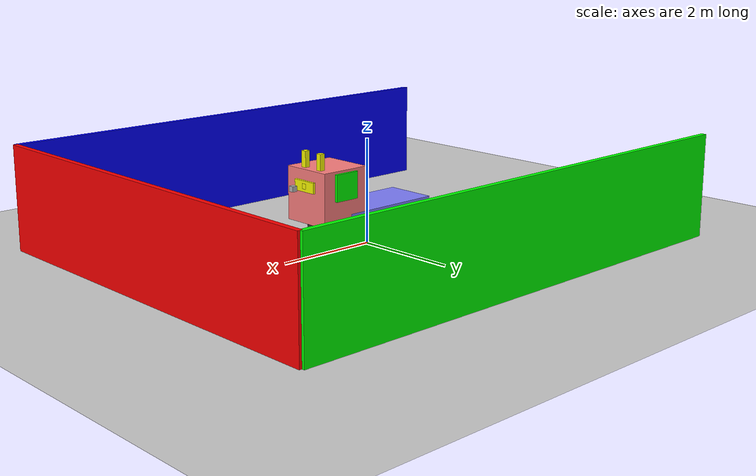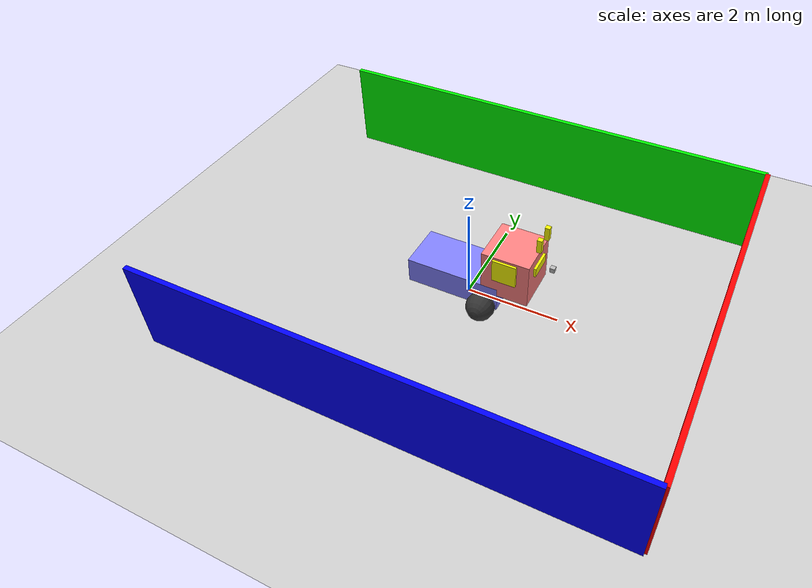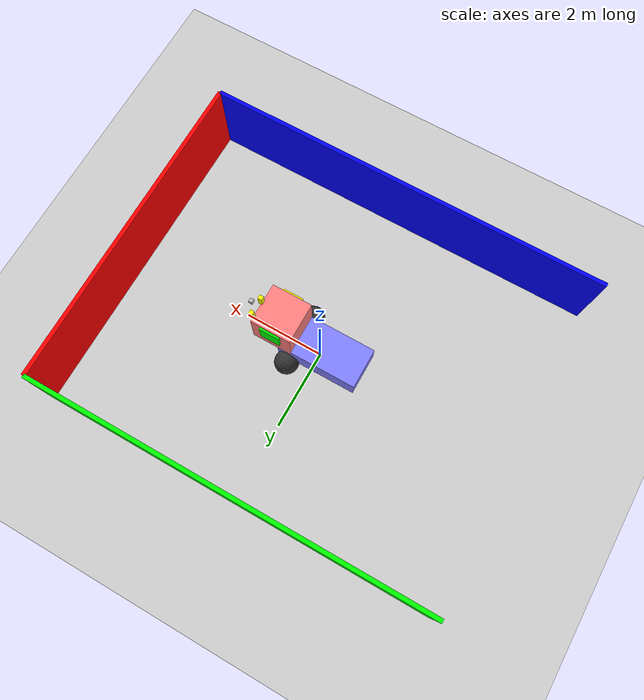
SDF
<?xml version="1.0" ?>
<sdf version="1.8">
  <world name="demo">
    <plugin
      filename="gz-sim-physics-system"
      name="gz::sim::systems::Physics">
    </plugin>
    <plugin
      filename="gz-sim-sensors-system"
      name="gz::sim::systems::Sensors">
      <render_engine>ogre2</render_engine>
    </plugin>
    <plugin
      filename="gz-sim-scene-broadcaster-system"
      name="gz::sim::systems::SceneBroadcaster">
    </plugin>
    <plugin
      filename="gz-sim-user-commands-system"
      name="gz::sim::systems::UserCommands">
    </plugin>
    <plugin
      filename="BasicSystem"
      name="ros_gz_example_gazebo::BasicSystem">
    </plugin>
    <plugin
      filename="FullSystem"
      name="ros_gz_example_gazebo::FullSystem">
    </plugin>

    <plugin filename="gz-sim-imu-system"
        name="gz::sim::systems::Imu">
    </plugin>

    <light name="sun" type="directional">
      <cast_shadows>true</cast_shadows>
      <pose>0 0 10 0 0 0</pose>
      <diffuse>0.8 0.8 0.8 1</diffuse>
      <specular>0.2 0.2 0.2 1</specular>
      <attenuation>
        <range>1000</range>
        <constant>0.9</constant>
        <linear>0.01</linear>
        <quadratic>0.001</quadratic>
      </attenuation>
      <direction>-0.5 0.1 -0.9</direction>
    </light>

    <model name="ground_plane">
      <static>true</static>
      <link name="link">
        <collision name="collision">
          <geometry>
            <plane>
              <normal>0 0 1</normal>
              <size>100 100</size>
            </plane>
          </geometry>
        </collision>
        <visual name="visual">
          <geometry>
            <plane>
              <normal>0 0 1</normal>
              <size>100 100</size>
            </plane>
          </geometry>
          <material>
            <ambient>0.8 0.8 0.8 1</ambient>
            <diffuse>0.8 0.8 0.8 1</diffuse>
            <specular>0.8 0.8 0.8 1</specular>
          </material>
        </visual>
      </link>
    </model>

    <model name="diff_drive">
      <self_collide>true</self_collide>
      <pose>0 0 0.35 0 0 0</pose>
      <include merge="true">
        <uri>package://ros_gz_example_description/models/diff_drive</uri>
      </include>

      <plugin
        filename="gz-sim-joint-state-publisher-system"
        name="gz::sim::systems::JointStatePublisher">
      </plugin>

      <plugin
        filename="gz-sim-pose-publisher-system"
        name="gz::sim::systems::PosePublisher">
        <publish_link_pose>true</publish_link_pose>
        <use_pose_vector_msg>true</use_pose_vector_msg>
        <static_publisher>true</static_publisher>
        <static_update_frequency>1</static_update_frequency>
      </plugin>

      <plugin
        filename="gz-sim-odometry-publisher-system"
        name="gz::sim::systems::OdometryPublisher">
        <odom_frame>diff_drive/odom</odom_frame>
        <robot_base_frame>diff_drive</robot_base_frame>
      </plugin>
    </model>

    <!-- ПРЕПЯТСТВИЯ ДЛЯ ТЕСТИРОВАНИЯ ЛИДАРА -->

    <!-- Стена спереди -->
    <model name="front_wall">
      <static>true</static>
      <pose>5 0 1 0 0 0</pose>
      <link name="link">
        <collision name="collision">
          <geometry>
            <box>
              <size>0.1 8 2</size>
            </box>
          </geometry>
        </collision>
        <visual name="visual">
          <geometry>
            <box>
              <size>0.1 8 2</size>
            </box>
          </geometry>
          <material>
            <ambient>1 0 0 1</ambient>
            <diffuse>1 0 0 1</diffuse>
            <specular>0.5 0 0 1</specular>
          </material>
        </visual>
      </link>
    </model>

    <!-- Стена слева -->
    <model name="left_wall">
      <static>true</static>
      <pose>0 4 1 0 0 0</pose>
      <link name="link">
        <collision name="collision">
          <geometry>
            <box>
              <size>10 0.1 2</size>
            </box>
          </geometry>
        </collision>
        <visual name="visual">
          <geometry>
            <box>
              <size>10 0.1 2</size>
            </box>
          </geometry>
          <material>
            <ambient>0 1 0 1</ambient>
            <diffuse>0 1 0 1</diffuse>
            <specular>0 0.5 0 1</specular>
          </material>
        </visual>
      </link>
    </model>

    <!-- Стена справа -->
    <model name="right_wall">
      <static>true</static>
      <pose>0 -4 1 0 0 0</pose>
      <link name="link">
        <collision name="collision">
          <geometry>
            <box>
              <size>10 0.1 2</size>
            </box>
          </geometry>
        </collision>
        <visual name="visual">
          <geometry>
            <box>
              <size>10 0.1 2</size>
            </box>
          </geometry>
          <material>
            <ambient>0 0 1 1</ambient>
            <diffuse>0 0 1 1</diffuse>
            <specular>0 0 0.5 1</specular>
          </material>
        </visual>
      </link>
    </model>

  </world>
</sdf>

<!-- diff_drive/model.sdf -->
<sdf version="1.8">
    <model name='diff_drive'>

      <link name='chassis'>
        <pose>-0.151427 0 0.175 0 0 0</pose>
        <inertial>
          <mass>1.14395</mass>
          <inertia>
            <ixx>0.126164</ixx>
            <ixy>0</ixy>
            <ixz>0</ixz>
            <iyy>0.416519</iyy>
            <iyz>0</iyz>
            <izz>0.481014</izz>
          </inertia>
        </inertial>
        <visual name='visual_chassis'>
          <geometry>
            <box>
              <size>2.01142 1 0.568726</size>
            </box>
          </geometry>
          <material>
            <ambient>0.5 0.5 1.0 1</ambient>
            <diffuse>0.5 0.5 1.0 1</diffuse>
            <specular>0.0 0.0 1.0 1</specular>
          </material>
        </visual>
        <collision name='collision_chassis'>
          <geometry>
            <box>
              <size>2.01142 1 0.568726</size>
            </box>
          </geometry>
        </collision>
      </link>

      <link name='left_wheel'>
        <pose>0.554283 0.625029 -0.025 -1.5707 0 0</pose>
        <inertial>
          <mass>2</mass>
          <inertia>
            <ixx>0.145833</ixx>
            <ixy>0</ixy>
            <ixz>0</ixz>
            <iyy>0.145833</iyy>
            <iyz>0</iyz>
            <izz>0.125</izz>
          </inertia>
        </inertial>
        <visual name='visual_left_wheel'>
          <geometry>
            <sphere>
              <radius>0.3</radius>
            </sphere>
          </geometry>
          <material>
            <ambient>0.2 0.2 0.2 1</ambient>
            <diffuse>0.2 0.2 0.2 1</diffuse>
            <specular>0.2 0.2 0.2 1</specular>
          </material>
        </visual>
        <collision name='collision_left_wheel'>
          <geometry>
            <sphere>
              <radius>0.3</radius>
            </sphere>
          </geometry>
        </collision>
      </link>

      <link name='right_wheel'>
        <pose>0.554282 -0.625029 -0.025 -1.5707 0 0</pose>
        <inertial>
          <mass>2</mass>
          <inertia>
            <ixx>0.145833</ixx>
            <ixy>0</ixy>
            <ixz>0</ixz>
            <iyy>0.145833</iyy>
            <iyz>0</iyz>
            <izz>0.125</izz>
          </inertia>
        </inertial>
        <visual name='visual_right_wheel'>
          <geometry>
            <sphere>
              <radius>0.3</radius>
            </sphere>
          </geometry>
          <material>
            <ambient>0.2 0.2 0.2 1</ambient>
            <diffuse>0.2 0.2 0.2 1</diffuse>
            <specular>0.2 0.2 0.2 1</specular>
          </material>
        </visual>
        <collision name='collision_right_wheel'>
          <geometry>
            <sphere>
              <radius>0.3</radius>
            </sphere>
          </geometry>
        </collision>
      </link>

      <link name='caster'>
        <pose>-0.957138 0 -0.125 0 0 0</pose>
        <inertial>
          <mass>1</mass>
          <inertia>
            <ixx>0.1</ixx>
            <ixy>0</ixy>
            <ixz>0</ixz>
            <iyy>0.1</iyy>
            <iyz>0</iyz>
            <izz>0.1</izz>
          </inertia>
        </inertial>
        <visual name='visual_caster'>
          <geometry>
            <sphere>
              <radius>0.2</radius>
            </sphere>
          </geometry>
          <material>
            <ambient>0.2 0.2 0.2 1</ambient>
            <diffuse>0.2 0.2 0.2 1</diffuse>
            <specular>0.2 0.2 0.2 1</specular>
          </material>
        </visual>
        <collision name='collision_caster'>
          <geometry>
            <sphere>
              <radius>0.2</radius>
            </sphere>
          </geometry>
        </collision>
      </link>

      <!-- ГОЛОВА -->
      <link name='golova'>
        <pose>1 0 0.8 0 0 0</pose>
        <inertial>
          <mass>0.5</mass>
          <inertia>
            <ixx>0.01</ixx>
            <ixy>0</ixy>
            <ixz>0</ixz>
            <iyy>0.01</iyy>
            <iyz>0</iyz>
            <izz>0.01</izz>
          </inertia>
        </inertial>
        <visual name='visual_golova'>
          <geometry>
            <box>
              <size>1 1 1</size>
            </box>
          </geometry>
          <material>
            <ambient>1.0 0.5 0.5 1</ambient>
            <diffuse>1.0 0.5 0.5 1</diffuse>
            <specular>0.5 0.2 0.2 1</specular>
          </material>
        </visual>
        <collision name='collision_golova'>
          <geometry>
            <box>
              <size>1 1 1</size>
            </box>
          </geometry>
        </collision>
      </link>

      <!-- ДЕКОРАТИВНЫЕ ЭЛЕМЕНТЫ -->
      <link name='yxo1'>
        <pose>1 0.5 1 0 0 0</pose>
        <inertial>
          <mass>0.1</mass>
          <inertia>
            <ixx>0.001</ixx>
            <ixy>0</ixy>
            <ixz>0</ixz>
            <iyy>0.001</iyy>
            <iyz>0</iyz>
            <izz>0.001</izz>
          </inertia>
        </inertial>
        <visual name='visual_yxo1'>
          <geometry>
            <box>
              <size>0.5 0.1 0.5</size>
            </box>
          </geometry>
          <material>
            <ambient>0.0 1.0 0.0 1</ambient>
            <diffuse>0.0 1.0 0.0 1</diffuse>
            <specular>0.0 0.5 0.0 1</specular>
          </material>
        </visual>
        <collision name='collision_yxo1'>
          <geometry>
            <box>
              <size>0.5 0.1 0.5</size>
            </box>
          </geometry>
        </collision>
      </link>

      <link name='yxo2'>
        <pose>1 -0.5 1 0 0 0</pose>
        <inertial>
          <mass>0.1</mass>
          <inertia>
            <ixx>0.001</ixx>
            <ixy>0</ixy>
            <ixz>0</ixz>
            <iyy>0.001</iyy>
            <iyz>0</iyz>
            <izz>0.001</izz>
          </inertia>
        </inertial>
        <visual name='visual_yxo2'>
          <geometry>
            <box>
              <size>0.5 0.1 0.5</size>
            </box>
          </geometry>
          <material>
            <ambient>1.0 1.0 0.0 1</ambient>
            <diffuse>1.0 1.0 0.0 1</diffuse>
            <specular>0.5 0.5 0.0 1</specular>
          </material>
        </visual>
        <collision name='collision_yxo2'>
          <geometry>
            <box>
              <size>0.5 0.1 0.5</size>
            </box>
          </geometry>
        </collision>
      </link>

      <link name='nos'>
        <pose>1.4 0 1 0 0 0</pose>
        <inertial>
          <mass>0.1</mass>
          <inertia>
            <ixx>0.001</ixx>
            <ixy>0</ixy>
            <ixz>0</ixz>
            <iyy>0.001</iyy>
            <iyz>0</iyz>
            <izz>0.001</izz>
          </inertia>
        </inertial>
        <visual name='visual_nos'>
          <geometry>
            <box>
              <size>0.3 0.5 0.2</size>
            </box>
          </geometry>
          <material>
            <ambient>1.0 1.0 0.0 1</ambient>
            <diffuse>1.0 1.0 0.0 1</diffuse>
            <specular>0.5 0.5 0.0 1</specular>
          </material>
        </visual>
        <collision name='collision_nos'>
          <geometry>
            <box>
              <size>0.3 0.5 0.2</size>
            </box>
          </geometry>
        </collision>
      </link>

      <link name='nos2'>
        <pose>1.5 0 1 0 0 0</pose>
        <inertial>
          <mass>0.1</mass>
          <inertia>
            <ixx>0.001</ixx>
            <ixy>0</ixy>
            <ixz>0</ixz>
            <iyy>0.001</iyy>
            <iyz>0</iyz>
            <izz>0.001</izz>
          </inertia>
        </inertial>
        <visual name='visual_nos2'>
          <geometry>
            <box>
              <size>0.1 0.1 0.1</size>
            </box>
          </geometry>
          <material>
            <ambient>1.0 1.0 0.0 1</ambient>
            <diffuse>1.0 1.0 0.0 1</diffuse>
            <specular>0.5 0.5 0.0 1</specular>
          </material>
        </visual>
        <collision name='collision_nos2'>
          <geometry>
            <box>
              <size>0.1 0.1 0.1</size>
            </box>
          </geometry>
        </collision>
      </link>

      <link name='glaza1'>
        <pose>1.5 0.4 1.5 0 0 0</pose>
        <inertial>
          <mass>0.1</mass>
          <inertia>
            <ixx>0.001</ixx>
            <ixy>0</ixy>
            <ixz>0</ixz>
            <iyy>0.001</iyy>
            <iyz>0</iyz>
            <izz>0.001</izz>
          </inertia>
        </inertial>
        <visual name='visual_glaza1'>
          <geometry>
            <box>
              <size>0.1 0.1 0.3</size>
            </box>
          </geometry>
          <material>
            <ambient>1.0 1.0 0.0 1</ambient>
            <diffuse>1.0 1.0 0.0 1</diffuse>
            <specular>0.5 0.5 0.0 1</specular>
          </material>
        </visual>
        <collision name='collision_glaza1'>
          <geometry>
            <box>
              <size>0.1 0.1 0.3</size>
            </box>
          </geometry>
        </collision>
      </link>

      <link name='glaza2'>
        <pose>1.5 0 1.5 0 0 0</pose>
        <inertial>
          <mass>0.1</mass>
          <inertia>
            <ixx>0.001</ixx>
            <ixy>0</ixy>
            <ixz>0</ixz>
            <iyy>0.001</iyy>
            <iyz>0</iyz>
            <izz>0.001</izz>
          </inertia>
        </inertial>
        <visual name='visual_glaza2'>
          <geometry>
            <box>
              <size>0.1 0.1 0.3</size>
            </box>
          </geometry>
          <material>
            <ambient>1.0 1.0 0.0 1</ambient>
            <diffuse>1.0 1.0 0.0 1</diffuse>
            <specular>0.5 0.5 0.0 1</specular>
          </material>
        </visual>
        <collision name='collision_glaza2'>
          <geometry>
            <box>
              <size>0.1 0.1 0.3</size>
            </box>
          </geometry>
        </collision>
      </link>

      <link name="lidar_link">
        <pose>1.8 0 1 0 0 0</pose>
        <inertial>
          <mass>0.1</mass>
          <inertia>
            <ixx>0.000166667</ixx>
            <iyy>0.000166667</iyy>
            <izz>0.000166667</izz>
          </inertia>
        </inertial>
        <collision name="collision">
          <geometry>
            <box>
              <size>0.1 0.1 0.1</size>
            </box>
          </geometry>
        </collision>
        <visual name="visual">
          <geometry>
            <box>
              <size>0.1 0.1 0.1</size>
            </box>
          </geometry>
        </visual>

        <sensor name='lidar' type='gpu_lidar'>
          <pose>0 0 0 0 0 0</pose>
          <topic>scan</topic>
          <frame>lidar_link</frame>

          <ros>
            <!-- Явно указываем frame_id -->
            <frame_id>diff_drive/lidar_link</frame_id>
          </ros>

          <update_rate>10</update_rate>

          <lidar>
            <scan>
              <horizontal>
                <samples>640</samples>
                <resolution>1</resolution>
                <min_angle>-1.396263</min_angle>
                <max_angle>1.396263</max_angle>
              </horizontal>
              <vertical>
                <samples>1</samples>
                <resolution>1</resolution>
                <min_angle>0.0</min_angle>
                <max_angle>0.0</max_angle>
              </vertical>
            </scan>
            <range>
              <min>0.08</min>
              <max>10.0</max>
              <resolution>0.01</resolution>
            </range>
          </lidar>
          <visualize>true</visualize>
        </sensor>
      </link>

      <!-- СУСТАВЫ -->
      <joint name='lidar_joint' type='fixed'>
        <parent>chassis</parent>
        <child>lidar_link</child>
      </joint>

      <joint name='left_wheel_joint' type='revolute'>
        <parent>chassis</parent>
        <child>left_wheel</child>
        <axis>
          <xyz>0 0 1</xyz>
          <limit>
            <lower>-1e10</lower>
            <upper>1e10</upper>
          </limit>
        </axis>
      </joint>

      <joint name='right_wheel_joint' type='revolute'>
        <parent>chassis</parent>
        <child>right_wheel</child>
        <axis>
          <xyz>0 0 1</xyz>
          <limit>
            <lower>-1e10</lower>
            <upper>1e10</upper>
          </limit>
        </axis>
      </joint>

      <joint name='caster_wheel' type='ball'>
        <parent>chassis</parent>
        <child>caster</child>
      </joint>

      <joint name='golova_joint' type='fixed'>
        <parent>chassis</parent>
        <child>golova</child>
      </joint>

      <joint name='yxo1_joint' type='fixed'>
        <parent>chassis</parent>
        <child>yxo1</child>
      </joint>

      <joint name='nos_joint' type='fixed'>
        <parent>chassis</parent>
        <child>nos</child>
      </joint>

      <joint name='nos2_joint' type='fixed'>
        <parent>chassis</parent>
        <child>nos2</child>
      </joint>

      <joint name='yxo2_joint' type='fixed'>
        <parent>chassis</parent>
        <child>yxo2</child>
      </joint>

      <joint name='glaza1_joint' type='fixed'>
        <parent>golova</parent>
        <child>glaza1</child>
      </joint>

      <joint name='glaza2_joint' type='fixed'>
        <parent>golova</parent>
        <child>glaza2</child>
      </joint>

      <plugin
        filename="ignition-gazebo-diff-drive-system"
        name="ignition::gazebo::systems::DiffDrive">
        <left_joint>left_wheel_joint</left_joint>
        <right_joint>right_wheel_joint</right_joint>
        <wheel_separation>1.25</wheel_separation>
        <wheel_radius>0.3</wheel_radius>
        <odom_publish_frequency>1</odom_publish_frequency>
        <max_linear_acceleration>1</max_linear_acceleration>
        <min_linear_acceleration>-1</min_linear_acceleration>
        <max_angular_acceleration>2</max_angular_acceleration>
        <min_angular_acceleration>-2</min_angular_acceleration>
        <max_linear_velocity>0.5</max_linear_velocity>
        <min_linear_velocity>-0.5</min_linear_velocity>
        <max_angular_velocity>1</max_angular_velocity>
        <min_angular_velocity>-1</min_angular_velocity>
      </plugin>
    </model>
</sdf>
